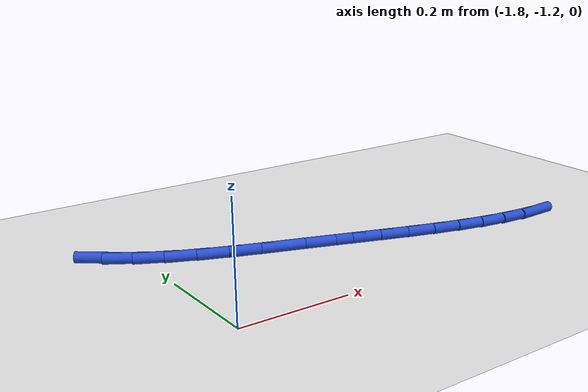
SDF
<sdf version="1.6">
 <world name="default">
  <model name="ground_plane">
   <static>1</static>
   <link name="link">
    <collision name="collision">
     <geometry><plane><normal>0 0 1</normal><size>100 100</size></plane></geometry>
     <surface><friction><ode><mu>100</mu><mu2>50</mu2></ode></friction></surface>
    </collision>
    <visual name="visual">
     <cast_shadows>0</cast_shadows>
     <geometry><plane><normal>0 0 1</normal><size>100 100</size></plane></geometry>
     <material>
      <script><uri>file://media/materials/scripts/gazebo.material</uri><name>Gazebo/WhiteGlow</name></script>
     </material>
    </visual>
   </link>
  </model>
  <model name="line">
   <link name="link_82">
    <pose>-1.8625535819707952 -0.841867778032951 0.01 0 1.57 -0.6800666037242344</pose>
    <collision name="collision">
     <geometry><cylinder><radius>0.01</radius><length>0.08</length></cylinder></geometry>
    </collision>
    <visual name="visual">
     <material>
      <script><name>Gazebo/Blue</name><uri>file://media/materials/scripts/gazebo.material</uri></script>
     </material>
     <geometry><cylinder><radius>0.01</radius><length>0.08</length></cylinder></geometry>
    </visual>
   </link>
   <link name="link_83">
    <pose>-1.824941249374906 -0.8722875621589873 0.01 0 1.57 -0.5579042886449823</pose>
    <collision name="collision">
     <geometry><cylinder><radius>0.01</radius><length>0.08</length></cylinder></geometry>
    </collision>
    <visual name="visual">
     <material>
      <script><name>Gazebo/Blue</name><uri>file://media/materials/scripts/gazebo.material</uri></script>
     </material>
     <geometry><cylinder><radius>0.01</radius><length>0.08</length></cylinder></geometry>
    </visual>
   </link>
   <link name="link_84">
    <pose>-1.7820757348172103 -0.8990370962985619 0.01 0 1.57 -0.4662143325936453</pose>
    <collision name="collision">
     <geometry><cylinder><radius>0.01</radius><length>0.08</length></cylinder></geometry>
    </collision>
    <visual name="visual">
     <material>
      <script><name>Gazebo/Blue</name><uri>file://media/materials/scripts/gazebo.material</uri></script>
     </material>
     <geometry><cylinder><radius>0.01</radius><length>0.08</length></cylinder></geometry>
    </visual>
   </link>
   <link name="link_85">
    <pose>-1.7349611807762464 -0.9227457304441585 0.01 0 1.57 -0.40009180258849664</pose>
    <collision name="collision">
     <geometry><cylinder><radius>0.01</radius><length>0.08</length></cylinder></geometry>
    </collision>
    <visual name="visual">
     <material>
      <script><name>Gazebo/Blue</name><uri>file://media/materials/scripts/gazebo.material</uri></script>
     </material>
     <geometry><cylinder><radius>0.01</radius><length>0.08</length></cylinder></geometry>
    </visual>
   </link>
   <link name="link_86">
    <pose>-1.684601729730551 -0.94404281458826 0.01 0 1.57 -0.3552626912835654</pose>
    <collision name="collision">
     <geometry><cylinder><radius>0.01</radius><length>0.08</length></cylinder></geometry>
    </collision>
    <visual name="visual">
     <material>
      <script><name>Gazebo/Blue</name><uri>file://media/materials/scripts/gazebo.material</uri></script>
     </material>
     <geometry><cylinder><radius>0.01</radius><length>0.08</length></cylinder></geometry>
    </visual>
   </link>
   <link name="link_87">
    <pose>-1.632001524158663 -0.9635576987233483 0.01 0 1.57 -0.3286958336322522</pose>
    <collision name="collision">
     <geometry><cylinder><radius>0.01</radius><length>0.08</length></cylinder></geometry>
    </collision>
    <visual name="visual">
     <material>
      <script><name>Gazebo/Blue</name><uri>file://media/materials/scripts/gazebo.material</uri></script>
     </material>
     <geometry><cylinder><radius>0.01</radius><length>0.08</length></cylinder></geometry>
    </visual>
   </link>
   <link name="link_88">
    <pose>-1.57816470653912 -0.9819197328419073 0.01 0 1.57 -0.3186753294931312</pose>
    <collision name="collision">
     <geometry><cylinder><radius>0.01</radius><length>0.08</length></cylinder></geometry>
    </collision>
    <visual name="visual">
     <material>
      <script><name>Gazebo/Blue</name><uri>file://media/materials/scripts/gazebo.material</uri></script>
     </material>
     <geometry><cylinder><radius>0.01</radius><length>0.08</length></cylinder></geometry>
    </visual>
   </link>
   <link name="link_89">
    <pose>-1.52409541935046 -0.9997582669364191 0.01 0 1.57 -0.32332583643153706</pose>
    <collision name="collision">
     <geometry><cylinder><radius>0.01</radius><length>0.08</length></cylinder></geometry>
    </collision>
    <visual name="visual">
     <material>
      <script><name>Gazebo/Blue</name><uri>file://media/materials/scripts/gazebo.material</uri></script>
     </material>
     <geometry><cylinder><radius>0.01</radius><length>0.08</length></cylinder></geometry>
    </visual>
   </link>
   <link name="link_90">
    <pose>-1.4707350063814815 -1.0176385178493137 0.01 0 1.57 -0.3277357746978837</pose>
    <collision name="collision">
     <geometry><cylinder><radius>0.01</radius><length>0.08</length></cylinder></geometry>
    </collision>
    <visual name="visual">
     <material>
      <script><name>Gazebo/Blue</name><uri>file://media/materials/scripts/gazebo.material</uri></script>
     </material>
     <geometry><cylinder><radius>0.01</radius><length>0.08</length></cylinder></geometry>
    </visual>
   </link>
   <link name="link_91">
    <pose>-1.4183593362702807 -1.0354460860508667 0.01 0 1.57 -0.3224414981632314</pose>
    <collision name="collision">
     <geometry><cylinder><radius>0.01</radius><length>0.08</length></cylinder></geometry>
    </collision>
    <visual name="visual">
     <material>
      <script><name>Gazebo/Blue</name><uri>file://media/materials/scripts/gazebo.material</uri></script>
     </material>
     <geometry><cylinder><radius>0.01</radius><length>0.08</length></cylinder></geometry>
    </visual>
   </link>
   <link name="link_92">
    <pose>-1.3668437303316239 -1.0526575131329383 0.01 0 1.57 -0.30674922907910507</pose>
    <collision name="collision">
     <geometry><cylinder><radius>0.01</radius><length>0.08</length></cylinder></geometry>
    </collision>
    <visual name="visual">
     <material>
      <script><name>Gazebo/Blue</name><uri>file://media/materials/scripts/gazebo.material</uri></script>
     </material>
     <geometry><cylinder><radius>0.01</radius><length>0.08</length></cylinder></geometry>
    </visual>
   </link>
   <link name="link_93">
    <pose>-1.3160580160830335 -1.0687437301479923 0.01 0 1.57 -0.28001358280556476</pose>
    <collision name="collision">
     <geometry><cylinder><radius>0.01</radius><length>0.08</length></cylinder></geometry>
    </collision>
    <visual name="visual">
     <material>
      <script><name>Gazebo/Blue</name><uri>file://media/materials/scripts/gazebo.material</uri></script>
     </material>
     <geometry><cylinder><radius>0.01</radius><length>0.08</length></cylinder></geometry>
    </visual>
   </link>
   <link name="link_94">
    <pose>-1.265872021042034 -1.0831756681484939 0.01 0 1.57 -0.24155831186948018</pose>
    <collision name="collision">
     <geometry><cylinder><radius>0.01</radius><length>0.08</length></cylinder></geometry>
    </collision>
    <visual name="visual">
     <material>
      <script><name>Gazebo/Blue</name><uri>file://media/materials/scripts/gazebo.material</uri></script>
     </material>
     <geometry><cylinder><radius>0.01</radius><length>0.08</length></cylinder></geometry>
    </visual>
   </link>
   <link name="link_95">
    <pose>-1.2161555727261497 -1.0954242581869058 0.01 0 1.57 -0.19078073464293746</pose>
    <collision name="collision">
     <geometry><cylinder><radius>0.01</radius><length>0.08</length></cylinder></geometry>
    </collision>
    <visual name="visual">
     <material>
      <script><name>Gazebo/Blue</name><uri>file://media/materials/scripts/gazebo.material</uri></script>
     </material>
     <geometry><cylinder><radius>0.01</radius><length>0.08</length></cylinder></geometry>
    </visual>
   </link>
   <link name="link_96">
    <pose>-1.1667784986529044 -1.1049604313156944 0.01 0 1.57 -0.12733174686026902</pose>
    <collision name="collision">
     <geometry><cylinder><radius>0.01</radius><length>0.08</length></cylinder></geometry>
    </collision>
    <visual name="visual">
     <material>
      <script><name>Gazebo/Blue</name><uri>file://media/materials/scripts/gazebo.material</uri></script>
     </material>
     <geometry><cylinder><radius>0.01</radius><length>0.08</length></cylinder></geometry>
    </visual>
   </link>
   <link name="link_97">
    <pose>-1.1176106263398224 -1.111255118587323 0.01 0 1.57 -0.05137443144812701</pose>
    <collision name="collision">
     <geometry><cylinder><radius>0.01</radius><length>0.08</length></cylinder></geometry>
    </collision>
    <visual name="visual">
     <material>
      <script><name>Gazebo/Blue</name><uri>file://media/materials/scripts/gazebo.material</uri></script>
     </material>
     <geometry><cylinder><radius>0.01</radius><length>0.08</length></cylinder></geometry>
    </visual>
   </link>
   <link name="link_98">
    <pose>-1.068521783304427 -1.1137792510542555 0.01 0 1.57 0.03534140703105878</pose>
    <collision name="collision">
     <geometry><cylinder><radius>0.01</radius><length>0.08</length></cylinder></geometry>
    </collision>
    <visual name="visual">
     <material>
      <script><name>Gazebo/Blue</name><uri>file://media/materials/scripts/gazebo.material</uri></script>
     </material>
     <geometry><cylinder><radius>0.01</radius><length>0.08</length></cylinder></geometry>
    </visual>
   </link>
  </model>
 </world>
</sdf>
